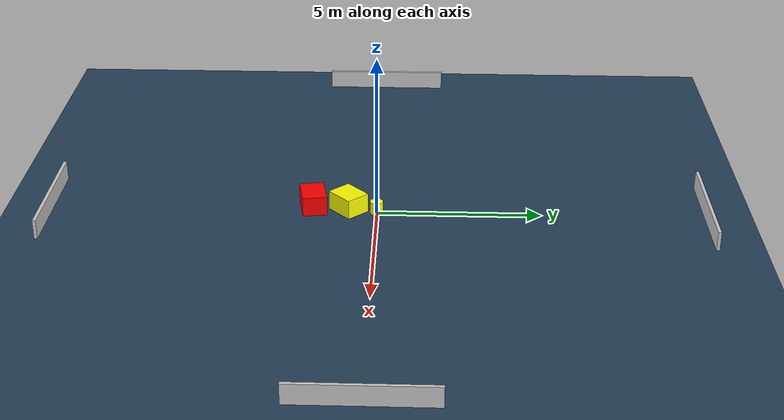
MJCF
<?xml version="1.0" ?>
<mujoco model="generated_environment">
  <option timestep="0.01" integrator="RK4" cone="elliptic"/>
  <default>
    <geom density="1"/>
  </default>
  <asset>
    <texture builtin="gradient" height="3072" name="skybox" rgb1="0.3 0.5 0.7" rgb2="0 0 0" type="skybox" width="512"/>
    <texture builtin="checker" height="300" name="groundplane" rgb1="0.2 0.3 0.4" rgb2="0.1 0.2 0.3" type="2d" width="300"/>
    <material name="groundplane" reflectance="0.2" texrepeat="5 5" texture="groundplane"/>
  </asset>
  <worldbody>
    <light dir="0 0 -1" directional="true" pos="0 0 1.5"/>
    <geom condim="3" friction="0.5 0.005 0.001" material="groundplane" name="floor" pos="0 0 0" size="0 0 0.05" type="plane"/>
    <body name="walls">
      <geom name="wall_1" condim="4" pos="-10.0 0.0 0.3" rgba="0.800000011920929 0.800000011920929 0.800000011920929 1.0" size="0.05 2.0 0.3" type="box"/>
      <geom name="wall_2" condim="4" pos="10.0 0.0 0.3" rgba="0.800000011920929 0.800000011920929 0.800000011920929 1.0" size="0.05 2.0 0.3" type="box"/>
      <geom name="wall_3" condim="4" pos="0.0 -10.0 0.3" rgba="0.800000011920929 0.800000011920929 0.800000011920929 1.0" size="2.0 0.05 0.3" type="box"/>
      <geom name="wall_4" condim="4" pos="0.0 10.0 0.3" rgba="0.800000011920929 0.800000011920929 0.800000011920929 1.0" size="2.0 0.05 0.3" type="box"/>
    </body>
    <body name="robot">
      <joint name="joint_x" type="slide" pos="0 0 0" axis="1 0 0"/>
      <joint name="joint_y" type="slide" pos="0 0 0" axis="0 1 0"/>
      <geom name="robot" type="cylinder" pos="0.0 0.0 0.2" size="0.2 0.2 0.0" mass="5.0" friction="1.0 0.005 0.0001" condim="4" rgba="1.0 1.0 0.0 1.0"/>
    </body>
    <body name="obstacle_1_movable">
      <geom name="obstacle_1_movable" condim="4" pos="-0.17189526928574306 -0.8665178849551151 0.3" euler="0 0 313.0232119094997" friction="0.0 0.005 0.001" rgba="1.0 1.0 0.0 1.0" size="0.39079465656785806 0.4648621870359066 0.3" type="box" mass="0.1"/>
      <joint type="free"/>
    </body>
    <body name="obstacle_2_static">
      <geom name="obstacle_2_static" condim="4" pos="-0.2659200713703417 -1.9523378647076701 0.3" euler="0 0 99.81895283726973" friction="0.0 0.005 0.001" rgba="1.0 0.0 0.0 1.0" size="0.3741448511954528 0.5143613945779564 0.3" type="box"/>
    </body>
  </worldbody>
  <actuator>
    <motor name="actuator_x" joint="joint_x" gear="1" ctrlrange="-1 1"/>
    <motor name="actuator_y" joint="joint_y" gear="1" ctrlrange="-1 1"/>
  </actuator>
</mujoco>
